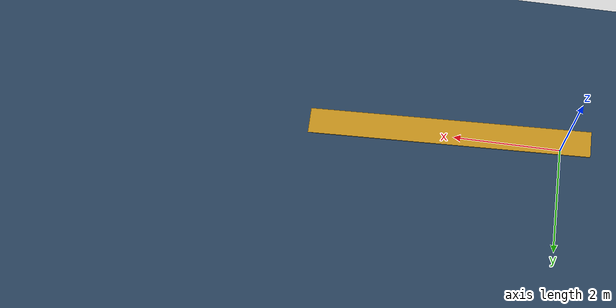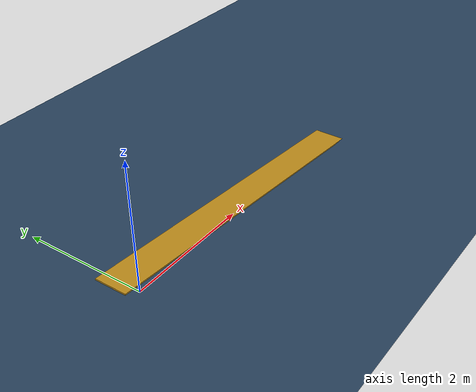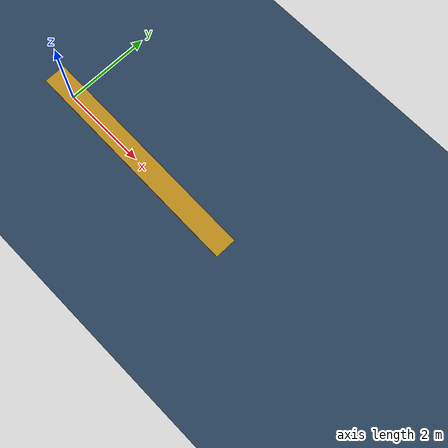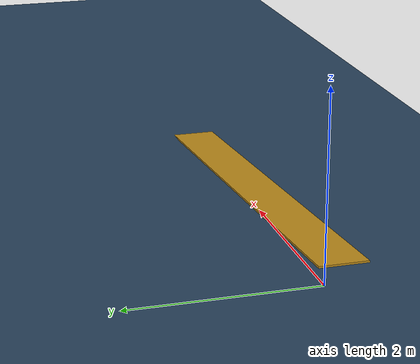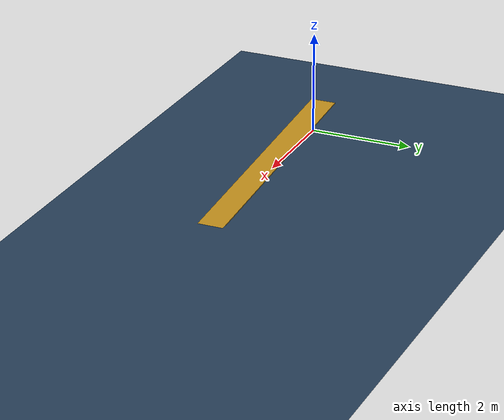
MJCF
<mujoco model="Passive Dynamic Walker">
  <compiler angle="degree" coordinate="local" inertiafromgeom="true" autolimits="true"/>
  <option integrator="RK4" timestep="0.001" gravity="0 0 -9.81"/>

  <visual>
    <headlight diffuse="0.6 0.6 0.6" ambient="0.1 0.1 0.1" specular="0.9 0.9 0.9"/>
    <rgba force="1 0 0 1" haze="0.15 0.25 0.35 1"/>
    <global azimuth="140" elevation="-20"/>
    <quality shadowsize="8192"/>
  </visual>

  <statistic center="0 0 .3" extent="1.2"/>

  <asset>
    <texture type="skybox" builtin="gradient" rgb1="0.3 0.5 0.7" rgb2="0 0 0" width="512" height="3072"/>
    <texture type="2d" name="groundplane" builtin="checker" mark="edge" rgb1="0.2 0.3 0.4" rgb2="0.1 0.2 0.3"
      markrgb="0.8 0.8 0.8" width="300" height="300"/>
    <material name="groundplane" texture="groundplane" texuniform="true" texrepeat="5 5" reflectance="0.2"/>
  </asset>

  <worldbody>
    <light pos="0 0 20" dir="0 0 -1" directional="false"/>
    <geom name="floor" size="0 0 0.05" type="plane" material="groundplane" friction="150 150 150"/>

    <geom name="slope" type="box" size="5 0.25 0.01" pos="4.5 0 0.0" rgba="0.75 0.55 0.1 1"
              euler="0 5 0" condim="4"/>

  </worldbody>
</mujoco>
